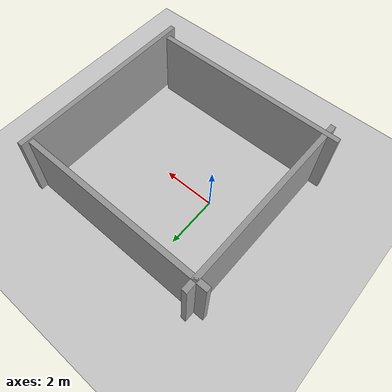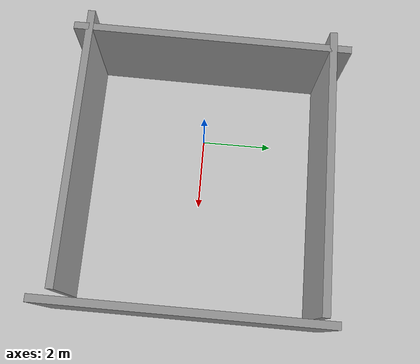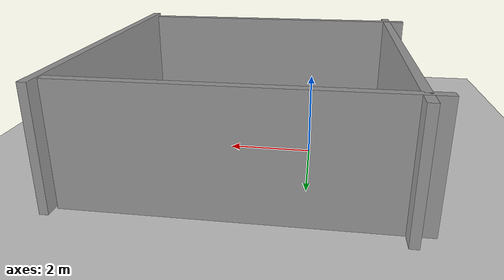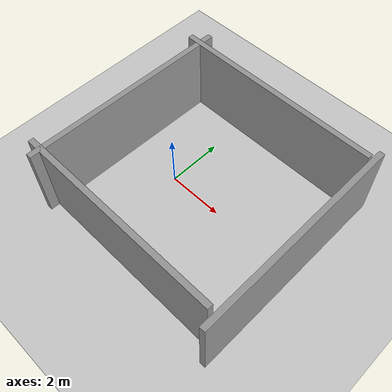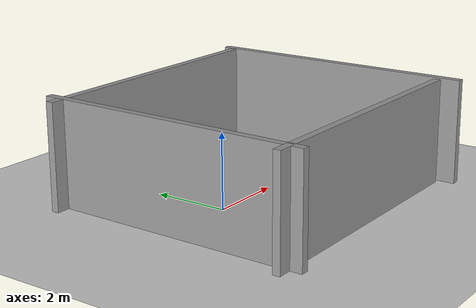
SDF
<sdf version="1.6">
 <world name="vrc_task_1">
  <scene>
   <ambient>0.4 0.4 0.4 1</ambient>
   <background>0.7 0.7 0.7 1</background>
   <shadows>1</shadows>
   <sky><clouds><speed>1</speed></clouds></sky>
  </scene>
  <physics name="default_physics" default="0" type="ode">
   <ode>
    <solver>
     <type>quick</type>
     <iters>10</iters>
     <sor>1</sor>
     <use_dynamic_moi_rescaling>0</use_dynamic_moi_rescaling>
    </solver>
    <constraints>
     <cfm>0</cfm>
     <erp>0.2</erp>
     <contact_max_correcting_vel>100</contact_max_correcting_vel>
     <contact_surface_layer>0.001</contact_surface_layer>
    </constraints>
   </ode>
   <max_step_size>0.004</max_step_size>
   <real_time_factor>1</real_time_factor>
   <real_time_update_rate>250</real_time_update_rate>
  </physics>
  <light name="sun" type="directional">
   <pose>0 0 10 0 -0 0</pose>
   <diffuse>0.8 0.8 0.8 1</diffuse>
   <specular>0.2 0.2 0.2 1</specular>
   <attenuation>
    <range>1000</range>
    <constant>0.9</constant>
    <linear>0.01</linear>
    <quadratic>0.001</quadratic>
   </attenuation>
   <direction>-0.5 0.1 -0.9</direction>
  </light>
  <model name="ground_plane">
   <static>1</static>
   <link name="link">
    <collision name="collision">
     <geometry><plane><normal>0 0 1</normal><size>100 100</size></plane></geometry>
     <surface><friction><ode><mu>100</mu><mu2>50</mu2></ode></friction></surface>
    </collision>
    <visual name="visual">
     <cast_shadows>0</cast_shadows>
     <geometry><plane><normal>0 0 1</normal><size>100 100</size></plane></geometry>
     <material>
      <script><uri>file://media/materials/scripts/gazebo.material</uri><name>Gazebo/Grey</name></script>
     </material>
    </visual>
   </link>
  </model>
  <gravity>0 0 -9.8066</gravity>
  <magnetic_field>6e-06 2.3e-05 -4.2e-05</magnetic_field>
  <atmosphere type="adiabatic"/>
  <spherical_coordinates>
   <surface_model>EARTH_WGS84</surface_model>
   <latitude_deg>0</latitude_deg>
   <longitude_deg>0</longitude_deg>
   <elevation>0</elevation>
   <heading_deg>0</heading_deg>
  </spherical_coordinates>
  <model name="grey_wall">
   <static>1</static>
   <link name="link">
    <pose>0 0 1.4 0 -0 0</pose>
    <collision name="collision"><geometry><box><size>7.5 0.2 2.8</size></box></geometry></collision>
    <visual name="visual">
     <cast_shadows>0</cast_shadows>
     <geometry><box><size>7.5 0.2 2.8</size></box></geometry>
     <material>
      <script>
       <uri>model://grey_wall/materials/scripts</uri>
       <uri>model://grey_wall/materials/textures</uri>
       <name>vrc/grey_wall</name>
      </script>
     </material>
    </visual>
   </link>
   <pose>1.27063 3.28541 0 0 -0 0</pose>
  </model>
  <model name="grey_wall_0">
   <static>1</static>
   <link name="link">
    <pose>0 0 1.4 0 -0 0</pose>
    <collision name="collision"><geometry><box><size>7.5 0.2 2.8</size></box></geometry></collision>
    <visual name="visual">
     <cast_shadows>0</cast_shadows>
     <geometry><box><size>7.5 0.2 2.8</size></box></geometry>
     <material>
      <script>
       <uri>model://grey_wall/materials/scripts</uri>
       <uri>model://grey_wall/materials/textures</uri>
       <name>vrc/grey_wall</name>
      </script>
     </material>
    </visual>
   </link>
   <pose>5.17566 -0.111939 0 0 0 -1.57159</pose>
  </model>
  <model name="grey_wall_1">
   <static>1</static>
   <link name="link">
    <pose>0 0 1.4 0 -0 0</pose>
    <collision name="collision"><geometry><box><size>7.5 0.2 2.8</size></box></geometry></collision>
    <visual name="visual">
     <cast_shadows>0</cast_shadows>
     <geometry><box><size>7.5 0.2 2.8</size></box></geometry>
     <material>
      <script>
       <uri>model://grey_wall/materials/scripts</uri>
       <uri>model://grey_wall/materials/textures</uri>
       <name>vrc/grey_wall</name>
      </script>
     </material>
    </visual>
   </link>
   <pose>1.17084 -3.31003 0 0 -0 0</pose>
  </model>
  <model name="grey_wall_2">
   <static>1</static>
   <link name="link">
    <pose>0 0 1.4 0 -0 0</pose>
    <collision name="collision"><geometry><box><size>7.5 0.2 2.8</size></box></geometry></collision>
    <visual name="visual">
     <cast_shadows>0</cast_shadows>
     <geometry><box><size>7.5 0.2 2.8</size></box></geometry>
     <material>
      <script>
       <uri>model://grey_wall/materials/scripts</uri>
       <uri>model://grey_wall/materials/textures</uri>
       <name>vrc/grey_wall</name>
      </script>
     </material>
    </visual>
   </link>
   <pose>-2.05159 0.018907 0 0 0 -1.58535</pose>
  </model>
 </world>
</sdf>
